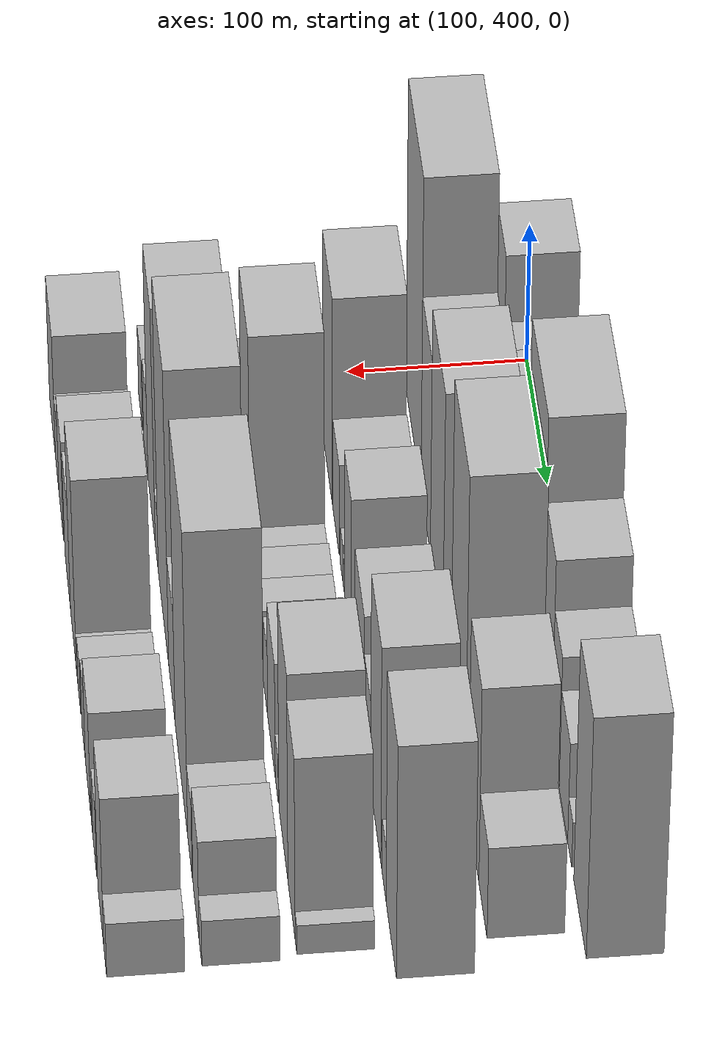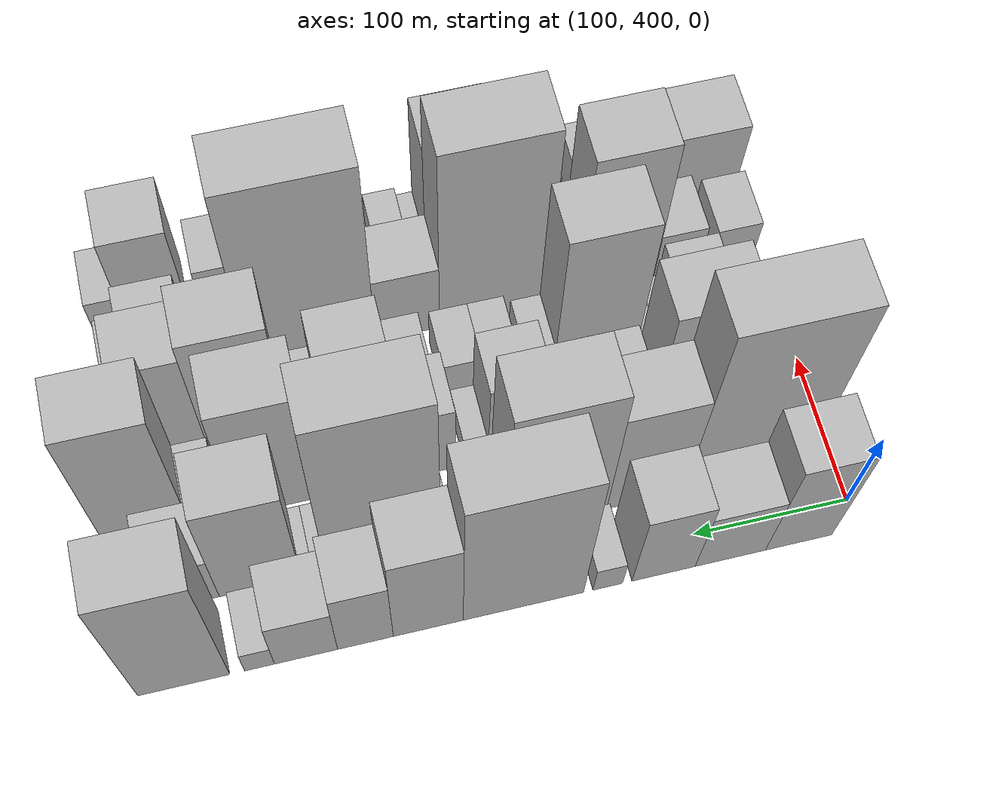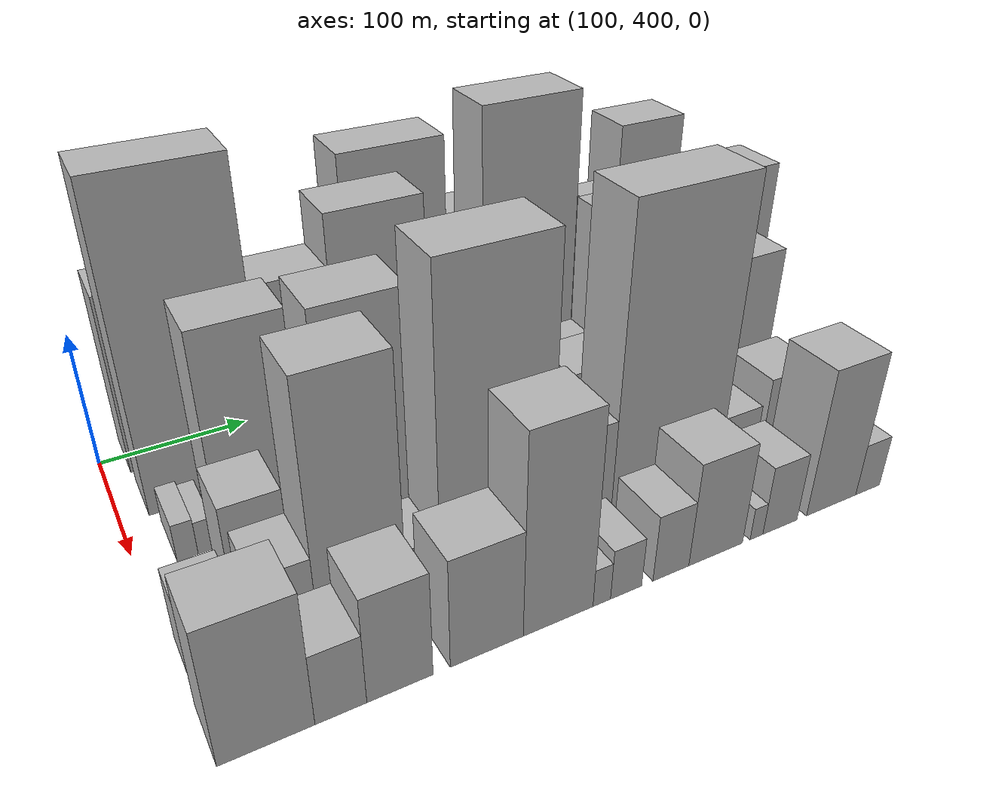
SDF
<sdf version="1.6">
 <world name="default">
  <model name="building_30">
   <static>1</static>
   <pose>100.0000 438.0873 0 0.000000 0.000000 0.000000</pose>
   <link name="link">
    <pose>0 0 66.00 0 0 0</pose>
    <collision name="collision"><geometry><box><size>40.0000 43.2168 132.0000</size></box></geometry></collision>
    <visual name="visual">
     <cast_shadows>0</cast_shadows>
     <geometry><box><size>40.0000 43.2168 132.0000</size></box></geometry>
     <material>
      <script>
       <uri>model://HANNAS_wall/materials/scripts</uri>
       <uri>model://HANNAS_wall/materials/textures</uri>
       <name>vrc/HANNAS_wall</name>
      </script>
     </material>
    </visual>
   </link>
  </model>
  <model name="building_31">
   <static>1</static>
   <pose>100.0000 482.3826 0 0.000000 0.000000 0.000000</pose>
   <link name="link">
    <pose>0 0 42.00 0 0 0</pose>
    <collision name="collision"><geometry><box><size>40.0000 45.3738 84.0000</size></box></geometry></collision>
    <visual name="visual">
     <cast_shadows>0</cast_shadows>
     <geometry><box><size>40.0000 45.3738 84.0000</size></box></geometry>
     <material>
      <script>
       <uri>model://HANNAS_wall/materials/scripts</uri>
       <uri>model://HANNAS_wall/materials/textures</uri>
       <name>vrc/HANNAS_wall</name>
      </script>
     </material>
    </visual>
   </link>
  </model>
  <model name="building_32">
   <static>1</static>
   <pose>100.0000 525.3424 0 0.000000 0.000000 0.000000</pose>
   <link name="link">
    <pose>0 0 52.50 0 0 0</pose>
    <collision name="collision"><geometry><box><size>40.0000 40.5458 105.0000</size></box></geometry></collision>
    <visual name="visual">
     <cast_shadows>0</cast_shadows>
     <geometry><box><size>40.0000 40.5458 105.0000</size></box></geometry>
     <material>
      <script>
       <uri>model://HANNAS_wall/materials/scripts</uri>
       <uri>model://HANNAS_wall/materials/textures</uri>
       <name>vrc/HANNAS_wall</name>
      </script>
     </material>
    </visual>
   </link>
  </model>
  <model name="building_33">
   <static>1</static>
   <pose>100.0000 561.0534 0 0.000000 0.000000 0.000000</pose>
   <link name="link">
    <pose>0 0 18.00 0 0 0</pose>
    <collision name="collision"><geometry><box><size>40.0000 18.8762 36.0000</size></box></geometry></collision>
    <visual name="visual">
     <cast_shadows>0</cast_shadows>
     <geometry><box><size>40.0000 18.8762 36.0000</size></box></geometry>
     <material>
      <script>
       <uri>model://HANNAS_wall/materials/scripts</uri>
       <uri>model://HANNAS_wall/materials/textures</uri>
       <name>vrc/HANNAS_wall</name>
      </script>
     </material>
    </visual>
   </link>
  </model>
  <model name="building_34">
   <static>1</static>
   <pose>100.0000 614.4144 0 0.000000 0.000000 0.000000</pose>
   <link name="link">
    <pose>0 0 96.00 0 0 0</pose>
    <collision name="collision"><geometry><box><size>40.0000 75.8458 192.0000</size></box></geometry></collision>
    <visual name="visual">
     <cast_shadows>0</cast_shadows>
     <geometry><box><size>40.0000 75.8458 192.0000</size></box></geometry>
     <material>
      <script>
       <uri>model://HANNAS_wall/materials/scripts</uri>
       <uri>model://HANNAS_wall/materials/textures</uri>
       <name>vrc/HANNAS_wall</name>
      </script>
     </material>
    </visual>
   </link>
  </model>
  <model name="building_35">
   <static>1</static>
   <pose>100.0000 674.1312 0 0.000000 0.000000 0.000000</pose>
   <link name="link">
    <pose>0 0 66.00 0 0 0</pose>
    <collision name="collision"><geometry><box><size>40.0000 43.5878 132.0000</size></box></geometry></collision>
    <visual name="visual">
     <cast_shadows>0</cast_shadows>
     <geometry><box><size>40.0000 43.5878 132.0000</size></box></geometry>
     <material>
      <script>
       <uri>model://HANNAS_wall/materials/scripts</uri>
       <uri>model://HANNAS_wall/materials/textures</uri>
       <name>vrc/HANNAS_wall</name>
      </script>
     </material>
    </visual>
   </link>
  </model>
  <model name="building_36">
   <static>1</static>
   <pose>100.0000 713.1540 0 0.000000 0.000000 0.000000</pose>
   <link name="link">
    <pose>0 0 48.00 0 0 0</pose>
    <collision name="collision"><geometry><box><size>40.0000 34.4577 96.0000</size></box></geometry></collision>
    <visual name="visual">
     <cast_shadows>0</cast_shadows>
     <geometry><box><size>40.0000 34.4577 96.0000</size></box></geometry>
     <material>
      <script>
       <uri>model://HANNAS_wall/materials/scripts</uri>
       <uri>model://HANNAS_wall/materials/textures</uri>
       <name>vrc/HANNAS_wall</name>
      </script>
     </material>
    </visual>
   </link>
  </model>
  <model name="building_37">
   <static>1</static>
   <pose>100.0000 749.8381 0 0.000000 0.000000 0.000000</pose>
   <link name="link">
    <pose>0 0 36.00 0 0 0</pose>
    <collision name="collision"><geometry><box><size>40.0000 38.9105 72.0000</size></box></geometry></collision>
    <visual name="visual">
     <cast_shadows>0</cast_shadows>
     <geometry><box><size>40.0000 38.9105 72.0000</size></box></geometry>
     <material>
      <script>
       <uri>model://HANNAS_wall/materials/scripts</uri>
       <uri>model://HANNAS_wall/materials/textures</uri>
       <name>vrc/HANNAS_wall</name>
      </script>
     </material>
    </visual>
   </link>
  </model>
  <model name="building_38">
   <static>1</static>
   <pose>100.0000 778.4212 0 0.000000 0.000000 0.000000</pose>
   <link name="link">
    <pose>0 0 16.50 0 0 0</pose>
    <collision name="collision"><geometry><box><size>40.0000 18.2558 33.0000</size></box></geometry></collision>
    <visual name="visual">
     <cast_shadows>0</cast_shadows>
     <geometry><box><size>40.0000 18.2558 33.0000</size></box></geometry>
     <material>
      <script>
       <uri>model://HANNAS_wall/materials/scripts</uri>
       <uri>model://HANNAS_wall/materials/textures</uri>
       <name>vrc/HANNAS_wall</name>
      </script>
     </material>
    </visual>
   </link>
  </model>
  <model name="building_39">
   <static>1</static>
   <pose>100.0000 824.4427 0 0.000000 0.000000 0.000000</pose>
   <link name="link">
    <pose>0 0 87.00 0 0 0</pose>
    <collision name="collision"><geometry><box><size>40.0000 55.7872 174.0000</size></box></geometry></collision>
    <visual name="visual">
     <cast_shadows>0</cast_shadows>
     <geometry><box><size>40.0000 55.7872 174.0000</size></box></geometry>
     <material>
      <script>
       <uri>model://HANNAS_wall/materials/scripts</uri>
       <uri>model://HANNAS_wall/materials/textures</uri>
       <name>vrc/HANNAS_wall</name>
      </script>
     </material>
    </visual>
   </link>
  </model>
  <model name="building_76">
   <static>1</static>
   <pose>149.0000 457.8460 0 0.000000 0.000000 0.000000</pose>
   <link name="link">
    <pose>0 0 112.50 0 0 0</pose>
    <collision name="collision"><geometry><box><size>40.0000 80.5373 225.0000</size></box></geometry></collision>
    <visual name="visual">
     <cast_shadows>0</cast_shadows>
     <geometry><box><size>40.0000 80.5373 225.0000</size></box></geometry>
     <material>
      <script>
       <uri>model://HANNAS_wall/materials/scripts</uri>
       <uri>model://HANNAS_wall/materials/textures</uri>
       <name>vrc/HANNAS_wall</name>
      </script>
     </material>
    </visual>
   </link>
  </model>
  <model name="building_77">
   <static>1</static>
   <pose>149.0000 523.0994 0 0.000000 0.000000 0.000000</pose>
   <link name="link">
    <pose>0 0 70.50 0 0 0</pose>
    <collision name="collision"><geometry><box><size>40.0000 49.9693 141.0000</size></box></geometry></collision>
    <visual name="visual">
     <cast_shadows>0</cast_shadows>
     <geometry><box><size>40.0000 49.9693 141.0000</size></box></geometry>
     <material>
      <script>
       <uri>model://HANNAS_wall/materials/scripts</uri>
       <uri>model://HANNAS_wall/materials/textures</uri>
       <name>vrc/HANNAS_wall</name>
      </script>
     </material>
    </visual>
   </link>
  </model>
  <model name="building_78">
   <static>1</static>
   <pose>149.0000 580.7592 0 0.000000 0.000000 0.000000</pose>
   <link name="link">
    <pose>0 0 88.50 0 0 0</pose>
    <collision name="collision"><geometry><box><size>40.0000 65.3503 177.0000</size></box></geometry></collision>
    <visual name="visual">
     <cast_shadows>0</cast_shadows>
     <geometry><box><size>40.0000 65.3503 177.0000</size></box></geometry>
     <material>
      <script>
       <uri>model://HANNAS_wall/materials/scripts</uri>
       <uri>model://HANNAS_wall/materials/textures</uri>
       <name>vrc/HANNAS_wall</name>
      </script>
     </material>
    </visual>
   </link>
  </model>
  <model name="building_79">
   <static>1</static>
   <pose>149.0000 624.8012 0 0.000000 0.000000 0.000000</pose>
   <link name="link">
    <pose>0 0 21.00 0 0 0</pose>
    <collision name="collision"><geometry><box><size>40.0000 22.7337 42.0000</size></box></geometry></collision>
    <visual name="visual">
     <cast_shadows>0</cast_shadows>
     <geometry><box><size>40.0000 22.7337 42.0000</size></box></geometry>
     <material>
      <script>
       <uri>model://HANNAS_wall/materials/scripts</uri>
       <uri>model://HANNAS_wall/materials/textures</uri>
       <name>vrc/HANNAS_wall</name>
      </script>
     </material>
    </visual>
   </link>
  </model>
  <model name="building_80">
   <static>1</static>
   <pose>149.0000 650.3942 0 0.000000 0.000000 0.000000</pose>
   <link name="link">
    <pose>0 0 10.50 0 0 0</pose>
    <collision name="collision"><geometry><box><size>40.0000 8.4525 21.0000</size></box></geometry></collision>
    <visual name="visual">
     <cast_shadows>0</cast_shadows>
     <geometry><box><size>40.0000 8.4525 21.0000</size></box></geometry>
     <material>
      <script>
       <uri>model://HANNAS_wall/materials/scripts</uri>
       <uri>model://HANNAS_wall/materials/textures</uri>
       <name>vrc/HANNAS_wall</name>
      </script>
     </material>
    </visual>
   </link>
  </model>
  <model name="building_81">
   <static>1</static>
   <pose>149.0000 690.8088 0 0.000000 0.000000 0.000000</pose>
   <link name="link">
    <pose>0 0 112.50 0 0 0</pose>
    <collision name="collision"><geometry><box><size>40.0000 72.3766 225.0000</size></box></geometry></collision>
    <visual name="visual">
     <cast_shadows>0</cast_shadows>
     <geometry><box><size>40.0000 72.3766 225.0000</size></box></geometry>
     <material>
      <script>
       <uri>model://HANNAS_wall/materials/scripts</uri>
       <uri>model://HANNAS_wall/materials/textures</uri>
       <name>vrc/HANNAS_wall</name>
      </script>
     </material>
    </visual>
   </link>
  </model>
  <model name="building_82">
   <static>1</static>
   <pose>149.0000 731.0602 0 0.000000 0.000000 0.000000</pose>
   <link name="link">
    <pose>0 0 9.00 0 0 0</pose>
    <collision name="collision"><geometry><box><size>40.0000 8.1261 18.0000</size></box></geometry></collision>
    <visual name="visual">
     <cast_shadows>0</cast_shadows>
     <geometry><box><size>40.0000 8.1261 18.0000</size></box></geometry>
     <material>
      <script>
       <uri>model://HANNAS_wall/materials/scripts</uri>
       <uri>model://HANNAS_wall/materials/textures</uri>
       <name>vrc/HANNAS_wall</name>
      </script>
     </material>
    </visual>
   </link>
  </model>
  <model name="building_83">
   <static>1</static>
   <pose>149.0000 738.9481 0 0.000000 0.000000 0.000000</pose>
   <link name="link">
    <pose>0 0 9.00 0 0 0</pose>
    <collision name="collision"><geometry><box><size>40.0000 7.6496 18.0000</size></box></geometry></collision>
    <visual name="visual">
     <cast_shadows>0</cast_shadows>
     <geometry><box><size>40.0000 7.6496 18.0000</size></box></geometry>
     <material>
      <script>
       <uri>model://HANNAS_wall/materials/scripts</uri>
       <uri>model://HANNAS_wall/materials/textures</uri>
       <name>vrc/HANNAS_wall</name>
      </script>
     </material>
    </visual>
   </link>
  </model>
  <model name="building_84">
   <static>1</static>
   <pose>149.0000 768.4375 0 0.000000 0.000000 0.000000</pose>
   <link name="link">
    <pose>0 0 70.50 0 0 0</pose>
    <collision name="collision"><geometry><box><size>40.0000 51.3292 141.0000</size></box></geometry></collision>
    <visual name="visual">
     <cast_shadows>0</cast_shadows>
     <geometry><box><size>40.0000 51.3292 141.0000</size></box></geometry>
     <material>
      <script>
       <uri>model://HANNAS_wall/materials/scripts</uri>
       <uri>model://HANNAS_wall/materials/textures</uri>
       <name>vrc/HANNAS_wall</name>
      </script>
     </material>
    </visual>
   </link>
  </model>
  <model name="building_85">
   <static>1</static>
   <pose>149.0000 813.8109 0 0.000000 0.000000 0.000000</pose>
   <link name="link">
    <pose>0 0 33.00 0 0 0</pose>
    <collision name="collision"><geometry><box><size>40.0000 39.4176 66.0000</size></box></geometry></collision>
    <visual name="visual">
     <cast_shadows>0</cast_shadows>
     <geometry><box><size>40.0000 39.4176 66.0000</size></box></geometry>
     <material>
      <script>
       <uri>model://HANNAS_wall/materials/scripts</uri>
       <uri>model://HANNAS_wall/materials/textures</uri>
       <name>vrc/HANNAS_wall</name>
      </script>
     </material>
    </visual>
   </link>
  </model>
  <model name="building_122">
   <static>1</static>
   <pose>198.0000 429.2547 0 0.000000 0.000000 0.000000</pose>
   <link name="link">
    <pose>0 0 13.50 0 0 0</pose>
    <collision name="collision"><geometry><box><size>40.0000 12.5790 27.0000</size></box></geometry></collision>
    <visual name="visual">
     <cast_shadows>0</cast_shadows>
     <geometry><box><size>40.0000 12.5790 27.0000</size></box></geometry>
     <material>
      <script>
       <uri>model://HANNAS_wall/materials/scripts</uri>
       <uri>model://HANNAS_wall/materials/textures</uri>
       <name>vrc/HANNAS_wall</name>
      </script>
     </material>
    </visual>
   </link>
  </model>
  <model name="building_123">
   <static>1</static>
   <pose>198.0000 441.0207 0 0.000000 0.000000 0.000000</pose>
   <link name="link">
    <pose>0 0 12.00 0 0 0</pose>
    <collision name="collision"><geometry><box><size>40.0000 10.9529 24.0000</size></box></geometry></collision>
    <visual name="visual">
     <cast_shadows>0</cast_shadows>
     <geometry><box><size>40.0000 10.9529 24.0000</size></box></geometry>
     <material>
      <script>
       <uri>model://HANNAS_wall/materials/scripts</uri>
       <uri>model://HANNAS_wall/materials/textures</uri>
       <name>vrc/HANNAS_wall</name>
      </script>
     </material>
    </visual>
   </link>
  </model>
  <model name="building_124">
   <static>1</static>
   <pose>198.0000 477.3033 0 0.000000 0.000000 0.000000</pose>
   <link name="link">
    <pose>0 0 75.00 0 0 0</pose>
    <collision name="collision"><geometry><box><size>40.0000 55.6124 150.0000</size></box></geometry></collision>
    <visual name="visual">
     <cast_shadows>0</cast_shadows>
     <geometry><box><size>40.0000 55.6124 150.0000</size></box></geometry>
     <material>
      <script>
       <uri>model://HANNAS_wall/materials/scripts</uri>
       <uri>model://HANNAS_wall/materials/textures</uri>
       <name>vrc/HANNAS_wall</name>
      </script>
     </material>
    </visual>
   </link>
  </model>
  <model name="building_125">
   <static>1</static>
   <pose>198.0000 526.4189 0 0.000000 0.000000 0.000000</pose>
   <link name="link">
    <pose>0 0 33.00 0 0 0</pose>
    <collision name="collision"><geometry><box><size>40.0000 36.6189 66.0000</size></box></geometry></collision>
    <visual name="visual">
     <cast_shadows>0</cast_shadows>
     <geometry><box><size>40.0000 36.6189 66.0000</size></box></geometry>
     <material>
      <script>
       <uri>model://HANNAS_wall/materials/scripts</uri>
       <uri>model://HANNAS_wall/materials/textures</uri>
       <name>vrc/HANNAS_wall</name>
      </script>
     </material>
    </visual>
   </link>
  </model>
  <model name="building_126">
   <static>1</static>
   <pose>198.0000 558.4666 0 0.000000 0.000000 0.000000</pose>
   <link name="link">
    <pose>0 0 13.50 0 0 0</pose>
    <collision name="collision"><geometry><box><size>40.0000 13.4764 27.0000</size></box></geometry></collision>
    <visual name="visual">
     <cast_shadows>0</cast_shadows>
     <geometry><box><size>40.0000 13.4764 27.0000</size></box></geometry>
     <material>
      <script>
       <uri>model://HANNAS_wall/materials/scripts</uri>
       <uri>model://HANNAS_wall/materials/textures</uri>
       <name>vrc/HANNAS_wall</name>
      </script>
     </material>
    </visual>
   </link>
  </model>
  <model name="building_127">
   <static>1</static>
   <pose>198.0000 569.7485 0 0.000000 0.000000 0.000000</pose>
   <link name="link">
    <pose>0 0 10.50 0 0 0</pose>
    <collision name="collision"><geometry><box><size>40.0000 9.0875 21.0000</size></box></geometry></collision>
    <visual name="visual">
     <cast_shadows>0</cast_shadows>
     <geometry><box><size>40.0000 9.0875 21.0000</size></box></geometry>
     <material>
      <script>
       <uri>model://HANNAS_wall/materials/scripts</uri>
       <uri>model://HANNAS_wall/materials/textures</uri>
       <name>vrc/HANNAS_wall</name>
      </script>
     </material>
    </visual>
   </link>
  </model>
  <model name="building_128">
   <static>1</static>
   <pose>198.0000 593.5507 0 0.000000 0.000000 0.000000</pose>
   <link name="link">
    <pose>0 0 52.50 0 0 0</pose>
    <collision name="collision"><geometry><box><size>40.0000 38.5168 105.0000</size></box></geometry></collision>
    <visual name="visual">
     <cast_shadows>0</cast_shadows>
     <geometry><box><size>40.0000 38.5168 105.0000</size></box></geometry>
     <material>
      <script>
       <uri>model://HANNAS_wall/materials/scripts</uri>
       <uri>model://HANNAS_wall/materials/textures</uri>
       <name>vrc/HANNAS_wall</name>
      </script>
     </material>
    </visual>
   </link>
  </model>
  <model name="building_129">
   <static>1</static>
   <pose>198.0000 620.3101 0 0.000000 0.000000 0.000000</pose>
   <link name="link">
    <pose>0 0 15.00 0 0 0</pose>
    <collision name="collision"><geometry><box><size>40.0000 15.0019 30.0000</size></box></geometry></collision>
    <visual name="visual">
     <cast_shadows>0</cast_shadows>
     <geometry><box><size>40.0000 15.0019 30.0000</size></box></geometry>
     <material>
      <script>
       <uri>model://HANNAS_wall/materials/scripts</uri>
       <uri>model://HANNAS_wall/materials/textures</uri>
       <name>vrc/HANNAS_wall</name>
      </script>
     </material>
    </visual>
   </link>
  </model>
  <model name="building_130">
   <static>1</static>
   <pose>198.0000 659.4314 0 0.000000 0.000000 0.000000</pose>
   <link name="link">
    <pose>0 0 45.00 0 0 0</pose>
    <collision name="collision"><geometry><box><size>40.0000 51.2406 90.0000</size></box></geometry></collision>
    <visual name="visual">
     <cast_shadows>0</cast_shadows>
     <geometry><box><size>40.0000 51.2406 90.0000</size></box></geometry>
     <material>
      <script>
       <uri>model://HANNAS_wall/materials/scripts</uri>
       <uri>model://HANNAS_wall/materials/textures</uri>
       <name>vrc/HANNAS_wall</name>
      </script>
     </material>
    </visual>
   </link>
  </model>
  <model name="building_131">
   <static>1</static>
   <pose>198.0000 703.1479 0 0.000000 0.000000 0.000000</pose>
   <link name="link">
    <pose>0 0 31.50 0 0 0</pose>
    <collision name="collision"><geometry><box><size>40.0000 36.1924 63.0000</size></box></geometry></collision>
    <visual name="visual">
     <cast_shadows>0</cast_shadows>
     <geometry><box><size>40.0000 36.1924 63.0000</size></box></geometry>
     <material>
      <script>
       <uri>model://HANNAS_wall/materials/scripts</uri>
       <uri>model://HANNAS_wall/materials/textures</uri>
       <name>vrc/HANNAS_wall</name>
      </script>
     </material>
    </visual>
   </link>
  </model>
  <model name="building_132">
   <static>1</static>
   <pose>198.0000 748.2386 0 0.000000 0.000000 0.000000</pose>
   <link name="link">
    <pose>0 0 78.00 0 0 0</pose>
    <collision name="collision"><geometry><box><size>40.0000 53.9890 156.0000</size></box></geometry></collision>
    <visual name="visual">
     <cast_shadows>0</cast_shadows>
     <geometry><box><size>40.0000 53.9890 156.0000</size></box></geometry>
     <material>
      <script>
       <uri>model://HANNAS_wall/materials/scripts</uri>
       <uri>model://HANNAS_wall/materials/textures</uri>
       <name>vrc/HANNAS_wall</name>
      </script>
     </material>
    </visual>
   </link>
  </model>
  <model name="building_133">
   <static>1</static>
   <pose>198.0000 778.5084 0 0.000000 0.000000 0.000000</pose>
   <link name="link">
    <pose>0 0 7.50 0 0 0</pose>
    <collision name="collision"><geometry><box><size>40.0000 6.5507 15.0000</size></box></geometry></collision>
    <visual name="visual">
     <cast_shadows>0</cast_shadows>
     <geometry><box><size>40.0000 6.5507 15.0000</size></box></geometry>
     <material>
      <script>
       <uri>model://HANNAS_wall/materials/scripts</uri>
       <uri>model://HANNAS_wall/materials/textures</uri>
       <name>vrc/HANNAS_wall</name>
      </script>
     </material>
    </visual>
   </link>
  </model>
  <model name="building_134">
   <static>1</static>
   <pose>198.0000 792.7010 0 0.000000 0.000000 0.000000</pose>
   <link name="link">
    <pose>0 0 19.50 0 0 0</pose>
    <collision name="collision"><geometry><box><size>40.0000 21.8345 39.0000</size></box></geometry></collision>
    <visual name="visual">
     <cast_shadows>0</cast_shadows>
     <geometry><box><size>40.0000 21.8345 39.0000</size></box></geometry>
     <material>
      <script>
       <uri>model://HANNAS_wall/materials/scripts</uri>
       <uri>model://HANNAS_wall/materials/textures</uri>
       <name>vrc/HANNAS_wall</name>
      </script>
     </material>
    </visual>
   </link>
  </model>
  <model name="building_135">
   <static>1</static>
   <pose>198.0000 830.3828 0 0.000000 0.000000 0.000000</pose>
   <link name="link">
    <pose>0 0 84.00 0 0 0</pose>
    <collision name="collision"><geometry><box><size>40.0000 53.5291 168.0000</size></box></geometry></collision>
    <visual name="visual">
     <cast_shadows>0</cast_shadows>
     <geometry><box><size>40.0000 53.5291 168.0000</size></box></geometry>
     <material>
      <script>
       <uri>model://HANNAS_wall/materials/scripts</uri>
       <uri>model://HANNAS_wall/materials/textures</uri>
       <name>vrc/HANNAS_wall</name>
      </script>
     </material>
    </visual>
   </link>
  </model>
  <model name="building_171">
   <static>1</static>
   <pose>247.0000 460.0760 0 0.000000 0.000000 0.000000</pose>
   <link name="link">
    <pose>0 0 34.50 0 0 0</pose>
    <collision name="collision"><geometry><box><size>40.0000 35.2977 69.0000</size></box></geometry></collision>
    <visual name="visual">
     <cast_shadows>0</cast_shadows>
     <geometry><box><size>40.0000 35.2977 69.0000</size></box></geometry>
     <material>
      <script>
       <uri>model://HANNAS_wall/materials/scripts</uri>
       <uri>model://HANNAS_wall/materials/textures</uri>
       <name>vrc/HANNAS_wall</name>
      </script>
     </material>
    </visual>
   </link>
  </model>
  <model name="building_172">
   <static>1</static>
   <pose>247.0000 483.9654 0 0.000000 0.000000 0.000000</pose>
   <link name="link">
    <pose>0 0 13.50 0 0 0</pose>
    <collision name="collision"><geometry><box><size>40.0000 12.4811 27.0000</size></box></geometry></collision>
    <visual name="visual">
     <cast_shadows>0</cast_shadows>
     <geometry><box><size>40.0000 12.4811 27.0000</size></box></geometry>
     <material>
      <script>
       <uri>model://HANNAS_wall/materials/scripts</uri>
       <uri>model://HANNAS_wall/materials/textures</uri>
       <name>vrc/HANNAS_wall</name>
      </script>
     </material>
    </visual>
   </link>
  </model>
  <model name="building_173">
   <static>1</static>
   <pose>247.0000 496.0633 0 0.000000 0.000000 0.000000</pose>
   <link name="link">
    <pose>0 0 13.50 0 0 0</pose>
    <collision name="collision"><geometry><box><size>40.0000 11.7147 27.0000</size></box></geometry></collision>
    <visual name="visual">
     <cast_shadows>0</cast_shadows>
     <geometry><box><size>40.0000 11.7147 27.0000</size></box></geometry>
     <material>
      <script>
       <uri>model://HANNAS_wall/materials/scripts</uri>
       <uri>model://HANNAS_wall/materials/textures</uri>
       <name>vrc/HANNAS_wall</name>
      </script>
     </material>
    </visual>
   </link>
  </model>
  <model name="building_174">
   <static>1</static>
   <pose>247.0000 529.4366 0 0.000000 0.000000 0.000000</pose>
   <link name="link">
    <pose>0 0 87.00 0 0 0</pose>
    <collision name="collision"><geometry><box><size>40.0000 55.0321 174.0000</size></box></geometry></collision>
    <visual name="visual">
     <cast_shadows>0</cast_shadows>
     <geometry><box><size>40.0000 55.0321 174.0000</size></box></geometry>
     <material>
      <script>
       <uri>model://HANNAS_wall/materials/scripts</uri>
       <uri>model://HANNAS_wall/materials/textures</uri>
       <name>vrc/HANNAS_wall</name>
      </script>
     </material>
    </visual>
   </link>
  </model>
  <model name="building_175">
   <static>1</static>
   <pose>247.0000 566.7355 0 0.000000 0.000000 0.000000</pose>
   <link name="link">
    <pose>0 0 18.00 0 0 0</pose>
    <collision name="collision"><geometry><box><size>40.0000 19.5657 36.0000</size></box></geometry></collision>
    <visual name="visual">
     <cast_shadows>0</cast_shadows>
     <geometry><box><size>40.0000 19.5657 36.0000</size></box></geometry>
     <material>
      <script>
       <uri>model://HANNAS_wall/materials/scripts</uri>
       <uri>model://HANNAS_wall/materials/textures</uri>
       <name>vrc/HANNAS_wall</name>
      </script>
     </material>
    </visual>
   </link>
  </model>
  <model name="building_176">
   <static>1</static>
   <pose>247.0000 593.3896 0 0.000000 0.000000 0.000000</pose>
   <link name="link">
    <pose>0 0 22.50 0 0 0</pose>
    <collision name="collision"><geometry><box><size>40.0000 23.7425 45.0000</size></box></geometry></collision>
    <visual name="visual">
     <cast_shadows>0</cast_shadows>
     <geometry><box><size>40.0000 23.7425 45.0000</size></box></geometry>
     <material>
      <script>
       <uri>model://HANNAS_wall/materials/scripts</uri>
       <uri>model://HANNAS_wall/materials/textures</uri>
       <name>vrc/HANNAS_wall</name>
      </script>
     </material>
    </visual>
   </link>
  </model>
  <model name="building_177">
   <static>1</static>
   <pose>247.0000 617.6910 0 0.000000 0.000000 0.000000</pose>
   <link name="link">
    <pose>0 0 22.50 0 0 0</pose>
    <collision name="collision"><geometry><box><size>40.0000 24.8602 45.0000</size></box></geometry></collision>
    <visual name="visual">
     <cast_shadows>0</cast_shadows>
     <geometry><box><size>40.0000 24.8602 45.0000</size></box></geometry>
     <material>
      <script>
       <uri>model://HANNAS_wall/materials/scripts</uri>
       <uri>model://HANNAS_wall/materials/textures</uri>
       <name>vrc/HANNAS_wall</name>
      </script>
     </material>
    </visual>
   </link>
  </model>
  <model name="building_178">
   <static>1</static>
   <pose>247.0000 650.2553 0 0.000000 0.000000 0.000000</pose>
   <link name="link">
    <pose>0 0 24.00 0 0 0</pose>
    <collision name="collision"><geometry><box><size>40.0000 26.2685 48.0000</size></box></geometry></collision>
    <visual name="visual">
     <cast_shadows>0</cast_shadows>
     <geometry><box><size>40.0000 26.2685 48.0000</size></box></geometry>
     <material>
      <script>
       <uri>model://HANNAS_wall/materials/scripts</uri>
       <uri>model://HANNAS_wall/materials/textures</uri>
       <name>vrc/HANNAS_wall</name>
      </script>
     </material>
    </visual>
   </link>
  </model>
  <model name="building_179">
   <static>1</static>
   <pose>247.0000 686.2776 0 0.000000 0.000000 0.000000</pose>
   <link name="link">
    <pose>0 0 42.00 0 0 0</pose>
    <collision name="collision"><geometry><box><size>40.0000 45.7761 84.0000</size></box></geometry></collision>
    <visual name="visual">
     <cast_shadows>0</cast_shadows>
     <geometry><box><size>40.0000 45.7761 84.0000</size></box></geometry>
     <material>
      <script>
       <uri>model://HANNAS_wall/materials/scripts</uri>
       <uri>model://HANNAS_wall/materials/textures</uri>
       <name>vrc/HANNAS_wall</name>
      </script>
     </material>
    </visual>
   </link>
  </model>
  <model name="building_180">
   <static>1</static>
   <pose>247.0000 718.2136 0 0.000000 0.000000 0.000000</pose>
   <link name="link">
    <pose>0 0 16.50 0 0 0</pose>
    <collision name="collision"><geometry><box><size>40.0000 18.0959 33.0000</size></box></geometry></collision>
    <visual name="visual">
     <cast_shadows>0</cast_shadows>
     <geometry><box><size>40.0000 18.0959 33.0000</size></box></geometry>
     <material>
      <script>
       <uri>model://HANNAS_wall/materials/scripts</uri>
       <uri>model://HANNAS_wall/materials/textures</uri>
       <name>vrc/HANNAS_wall</name>
      </script>
     </material>
    </visual>
   </link>
  </model>
  <model name="building_181">
   <static>1</static>
   <pose>247.0000 757.5218 0 0.000000 0.000000 0.000000</pose>
   <link name="link">
    <pose>0 0 75.00 0 0 0</pose>
    <collision name="collision"><geometry><box><size>40.0000 52.5205 150.0000</size></box></geometry></collision>
    <visual name="visual">
     <cast_shadows>0</cast_shadows>
     <geometry><box><size>40.0000 52.5205 150.0000</size></box></geometry>
     <material>
      <script>
       <uri>model://HANNAS_wall/materials/scripts</uri>
       <uri>model://HANNAS_wall/materials/textures</uri>
       <name>vrc/HANNAS_wall</name>
      </script>
     </material>
    </visual>
   </link>
  </model>
  <model name="building_182">
   <static>1</static>
   <pose>247.0000 804.6138 0 0.000000 0.000000 0.000000</pose>
   <link name="link">
    <pose>0 0 66.00 0 0 0</pose>
    <collision name="collision"><geometry><box><size>40.0000 41.6635 132.0000</size></box></geometry></collision>
    <visual name="visual">
     <cast_shadows>0</cast_shadows>
     <geometry><box><size>40.0000 41.6635 132.0000</size></box></geometry>
     <material>
      <script>
       <uri>model://HANNAS_wall/materials/scripts</uri>
       <uri>model://HANNAS_wall/materials/textures</uri>
       <name>vrc/HANNAS_wall</name>
      </script>
     </material>
    </visual>
   </link>
  </model>
  <model name="building_183">
   <static>1</static>
   <pose>247.0000 830.5005 0 0.000000 0.000000 0.000000</pose>
   <link name="link">
    <pose>0 0 10.50 0 0 0</pose>
    <collision name="collision"><geometry><box><size>40.0000 10.1100 21.0000</size></box></geometry></collision>
    <visual name="visual">
     <cast_shadows>0</cast_shadows>
     <geometry><box><size>40.0000 10.1100 21.0000</size></box></geometry>
     <material>
      <script>
       <uri>model://HANNAS_wall/materials/scripts</uri>
       <uri>model://HANNAS_wall/materials/textures</uri>
       <name>vrc/HANNAS_wall</name>
      </script>
     </material>
    </visual>
   </link>
  </model>
  <model name="building_220">
   <static>1</static>
   <pose>296.0000 421.8518 0 0.000000 0.000000 0.000000</pose>
   <link name="link">
    <pose>0 0 25.50 0 0 0</pose>
    <collision name="collision"><geometry><box><size>40.0000 29.4371 51.0000</size></box></geometry></collision>
    <visual name="visual">
     <cast_shadows>0</cast_shadows>
     <geometry><box><size>40.0000 29.4371 51.0000</size></box></geometry>
     <material>
      <script>
       <uri>model://HANNAS_wall/materials/scripts</uri>
       <uri>model://HANNAS_wall/materials/textures</uri>
       <name>vrc/HANNAS_wall</name>
      </script>
     </material>
    </visual>
   </link>
  </model>
  <model name="building_221">
   <static>1</static>
   <pose>296.0000 460.0699 0 0.000000 0.000000 0.000000</pose>
   <link name="link">
    <pose>0 0 30.00 0 0 0</pose>
    <collision name="collision"><geometry><box><size>40.0000 30.9992 60.0000</size></box></geometry></collision>
    <visual name="visual">
     <cast_shadows>0</cast_shadows>
     <geometry><box><size>40.0000 30.9992 60.0000</size></box></geometry>
     <material>
      <script>
       <uri>model://HANNAS_wall/materials/scripts</uri>
       <uri>model://HANNAS_wall/materials/textures</uri>
       <name>vrc/HANNAS_wall</name>
      </script>
     </material>
    </visual>
   </link>
  </model>
  <model name="building_222">
   <static>1</static>
   <pose>296.0000 501.4451 0 0.000000 0.000000 0.000000</pose>
   <link name="link">
    <pose>0 0 85.50 0 0 0</pose>
    <collision name="collision"><geometry><box><size>40.0000 51.7511 171.0000</size></box></geometry></collision>
    <visual name="visual">
     <cast_shadows>0</cast_shadows>
     <geometry><box><size>40.0000 51.7511 171.0000</size></box></geometry>
     <material>
      <script>
       <uri>model://HANNAS_wall/materials/scripts</uri>
       <uri>model://HANNAS_wall/materials/textures</uri>
       <name>vrc/HANNAS_wall</name>
      </script>
     </material>
    </visual>
   </link>
  </model>
  <model name="building_223">
   <static>1</static>
   <pose>296.0000 537.8860 0 0.000000 0.000000 0.000000</pose>
   <link name="link">
    <pose>0 0 21.00 0 0 0</pose>
    <collision name="collision"><geometry><box><size>40.0000 21.1307 42.0000</size></box></geometry></collision>
    <visual name="visual">
     <cast_shadows>0</cast_shadows>
     <geometry><box><size>40.0000 21.1307 42.0000</size></box></geometry>
     <material>
      <script>
       <uri>model://HANNAS_wall/materials/scripts</uri>
       <uri>model://HANNAS_wall/materials/textures</uri>
       <name>vrc/HANNAS_wall</name>
      </script>
     </material>
    </visual>
   </link>
  </model>
  <model name="building_224">
   <static>1</static>
   <pose>296.0000 584.7406 0 0.000000 0.000000 0.000000</pose>
   <link name="link">
    <pose>0 0 106.50 0 0 0</pose>
    <collision name="collision"><geometry><box><size>40.0000 72.5785 213.0000</size></box></geometry></collision>
    <visual name="visual">
     <cast_shadows>0</cast_shadows>
     <geometry><box><size>40.0000 72.5785 213.0000</size></box></geometry>
     <material>
      <script>
       <uri>model://HANNAS_wall/materials/scripts</uri>
       <uri>model://HANNAS_wall/materials/textures</uri>
       <name>vrc/HANNAS_wall</name>
      </script>
     </material>
    </visual>
   </link>
  </model>
  <model name="building_225">
   <static>1</static>
   <pose>296.0000 642.5005 0 0.000000 0.000000 0.000000</pose>
   <link name="link">
    <pose>0 0 40.50 0 0 0</pose>
    <collision name="collision"><geometry><box><size>40.0000 42.9415 81.0000</size></box></geometry></collision>
    <visual name="visual">
     <cast_shadows>0</cast_shadows>
     <geometry><box><size>40.0000 42.9415 81.0000</size></box></geometry>
     <material>
      <script>
       <uri>model://HANNAS_wall/materials/scripts</uri>
       <uri>model://HANNAS_wall/materials/textures</uri>
       <name>vrc/HANNAS_wall</name>
      </script>
     </material>
    </visual>
   </link>
  </model>
  <model name="building_226">
   <static>1</static>
   <pose>296.0000 705.7168 0 0.000000 0.000000 0.000000</pose>
   <link name="link">
    <pose>0 0 109.50 0 0 0</pose>
    <collision name="collision"><geometry><box><size>40.0000 83.4910 219.0000</size></box></geometry></collision>
    <visual name="visual">
     <cast_shadows>0</cast_shadows>
     <geometry><box><size>40.0000 83.4910 219.0000</size></box></geometry>
     <material>
      <script>
       <uri>model://HANNAS_wall/materials/scripts</uri>
       <uri>model://HANNAS_wall/materials/textures</uri>
       <name>vrc/HANNAS_wall</name>
      </script>
     </material>
    </visual>
   </link>
  </model>
  <model name="building_227">
   <static>1</static>
   <pose>296.0000 762.2195 0 0.000000 0.000000 0.000000</pose>
   <link name="link">
    <pose>0 0 27.00 0 0 0</pose>
    <collision name="collision"><geometry><box><size>40.0000 29.5146 54.0000</size></box></geometry></collision>
    <visual name="visual">
     <cast_shadows>0</cast_shadows>
     <geometry><box><size>40.0000 29.5146 54.0000</size></box></geometry>
     <material>
      <script>
       <uri>model://HANNAS_wall/materials/scripts</uri>
       <uri>model://HANNAS_wall/materials/textures</uri>
       <name>vrc/HANNAS_wall</name>
      </script>
     </material>
    </visual>
   </link>
  </model>
  <model name="building_228">
   <static>1</static>
   <pose>296.0000 801.4884 0 0.000000 0.000000 0.000000</pose>
   <link name="link">
    <pose>0 0 36.00 0 0 0</pose>
    <collision name="collision"><geometry><box><size>40.0000 39.0230 72.0000</size></box></geometry></collision>
    <visual name="visual">
     <cast_shadows>0</cast_shadows>
     <geometry><box><size>40.0000 39.0230 72.0000</size></box></geometry>
     <material>
      <script>
       <uri>model://HANNAS_wall/materials/scripts</uri>
       <uri>model://HANNAS_wall/materials/textures</uri>
       <name>vrc/HANNAS_wall</name>
      </script>
     </material>
    </visual>
   </link>
  </model>
  <model name="building_229">
   <static>1</static>
   <pose>296.0000 830.0950 0 0.000000 0.000000 0.000000</pose>
   <link name="link">
    <pose>0 0 16.50 0 0 0</pose>
    <collision name="collision"><geometry><box><size>40.0000 18.1903 33.0000</size></box></geometry></collision>
    <visual name="visual">
     <cast_shadows>0</cast_shadows>
     <geometry><box><size>40.0000 18.1903 33.0000</size></box></geometry>
     <material>
      <script>
       <uri>model://HANNAS_wall/materials/scripts</uri>
       <uri>model://HANNAS_wall/materials/textures</uri>
       <name>vrc/HANNAS_wall</name>
      </script>
     </material>
    </visual>
   </link>
  </model>
  <model name="building_268">
   <static>1</static>
   <pose>345.0000 430.0730 0 0.000000 0.000000 0.000000</pose>
   <link name="link">
    <pose>0 0 45.00 0 0 0</pose>
    <collision name="collision"><geometry><box><size>40.0000 49.2771 90.0000</size></box></geometry></collision>
    <visual name="visual">
     <cast_shadows>0</cast_shadows>
     <geometry><box><size>40.0000 49.2771 90.0000</size></box></geometry>
     <material>
      <script>
       <uri>model://HANNAS_wall/materials/scripts</uri>
       <uri>model://HANNAS_wall/materials/textures</uri>
       <name>vrc/HANNAS_wall</name>
      </script>
     </material>
    </visual>
   </link>
  </model>
  <model name="building_269">
   <static>1</static>
   <pose>345.0000 468.5123 0 0.000000 0.000000 0.000000</pose>
   <link name="link">
    <pose>0 0 24.00 0 0 0</pose>
    <collision name="collision"><geometry><box><size>40.0000 27.6016 48.0000</size></box></geometry></collision>
    <visual name="visual">
     <cast_shadows>0</cast_shadows>
     <geometry><box><size>40.0000 27.6016 48.0000</size></box></geometry>
     <material>
      <script>
       <uri>model://HANNAS_wall/materials/scripts</uri>
       <uri>model://HANNAS_wall/materials/textures</uri>
       <name>vrc/HANNAS_wall</name>
      </script>
     </material>
    </visual>
   </link>
  </model>
  <model name="building_270">
   <static>1</static>
   <pose>345.0000 500.8876 0 0.000000 0.000000 0.000000</pose>
   <link name="link">
    <pose>0 0 36.00 0 0 0</pose>
    <collision name="collision"><geometry><box><size>40.0000 37.1490 72.0000</size></box></geometry></collision>
    <visual name="visual">
     <cast_shadows>0</cast_shadows>
     <geometry><box><size>40.0000 37.1490 72.0000</size></box></geometry>
     <material>
      <script>
       <uri>model://HANNAS_wall/materials/scripts</uri>
       <uri>model://HANNAS_wall/materials/textures</uri>
       <name>vrc/HANNAS_wall</name>
      </script>
     </material>
    </visual>
   </link>
  </model>
  <model name="building_271">
   <static>1</static>
   <pose>345.0000 551.5958 0 0.000000 0.000000 0.000000</pose>
   <link name="link">
    <pose>0 0 37.50 0 0 0</pose>
    <collision name="collision"><geometry><box><size>40.0000 44.2674 75.0000</size></box></geometry></collision>
    <visual name="visual">
     <cast_shadows>0</cast_shadows>
     <geometry><box><size>40.0000 44.2674 75.0000</size></box></geometry>
     <material>
      <script>
       <uri>model://HANNAS_wall/materials/scripts</uri>
       <uri>model://HANNAS_wall/materials/textures</uri>
       <name>vrc/HANNAS_wall</name>
      </script>
     </material>
    </visual>
   </link>
  </model>
  <model name="building_272">
   <static>1</static>
   <pose>345.0000 596.3611 0 0.000000 0.000000 0.000000</pose>
   <link name="link">
    <pose>0 0 69.00 0 0 0</pose>
    <collision name="collision"><geometry><box><size>40.0000 45.2633 138.0000</size></box></geometry></collision>
    <visual name="visual">
     <cast_shadows>0</cast_shadows>
     <geometry><box><size>40.0000 45.2633 138.0000</size></box></geometry>
     <material>
      <script>
       <uri>model://HANNAS_wall/materials/scripts</uri>
       <uri>model://HANNAS_wall/materials/textures</uri>
       <name>vrc/HANNAS_wall</name>
      </script>
     </material>
    </visual>
   </link>
  </model>
  <model name="building_273">
   <static>1</static>
   <pose>345.0000 624.9179 0 0.000000 0.000000 0.000000</pose>
   <link name="link">
    <pose>0 0 13.50 0 0 0</pose>
    <collision name="collision"><geometry><box><size>40.0000 11.8502 27.0000</size></box></geometry></collision>
    <visual name="visual">
     <cast_shadows>0</cast_shadows>
     <geometry><box><size>40.0000 11.8502 27.0000</size></box></geometry>
     <material>
      <script>
       <uri>model://HANNAS_wall/materials/scripts</uri>
       <uri>model://HANNAS_wall/materials/textures</uri>
       <name>vrc/HANNAS_wall</name>
      </script>
     </material>
    </visual>
   </link>
  </model>
  <model name="building_274">
   <static>1</static>
   <pose>345.0000 641.6305 0 0.000000 0.000000 0.000000</pose>
   <link name="link">
    <pose>0 0 18.00 0 0 0</pose>
    <collision name="collision"><geometry><box><size>40.0000 21.5752 36.0000</size></box></geometry></collision>
    <visual name="visual">
     <cast_shadows>0</cast_shadows>
     <geometry><box><size>40.0000 21.5752 36.0000</size></box></geometry>
     <material>
      <script>
       <uri>model://HANNAS_wall/materials/scripts</uri>
       <uri>model://HANNAS_wall/materials/textures</uri>
       <name>vrc/HANNAS_wall</name>
      </script>
     </material>
    </visual>
   </link>
  </model>
  <model name="building_275">
   <static>1</static>
   <pose>345.0000 673.4260 0 0.000000 0.000000 0.000000</pose>
   <link name="link">
    <pose>0 0 24.00 0 0 0</pose>
    <collision name="collision"><geometry><box><size>40.0000 26.0157 48.0000</size></box></geometry></collision>
    <visual name="visual">
     <cast_shadows>0</cast_shadows>
     <geometry><box><size>40.0000 26.0157 48.0000</size></box></geometry>
     <material>
      <script>
       <uri>model://HANNAS_wall/materials/scripts</uri>
       <uri>model://HANNAS_wall/materials/textures</uri>
       <name>vrc/HANNAS_wall</name>
      </script>
     </material>
    </visual>
   </link>
  </model>
  <model name="building_276">
   <static>1</static>
   <pose>345.0000 706.7764 0 0.000000 0.000000 0.000000</pose>
   <link name="link">
    <pose>0 0 37.50 0 0 0</pose>
    <collision name="collision"><geometry><box><size>40.0000 40.6851 75.0000</size></box></geometry></collision>
    <visual name="visual">
     <cast_shadows>0</cast_shadows>
     <geometry><box><size>40.0000 40.6851 75.0000</size></box></geometry>
     <material>
      <script>
       <uri>model://HANNAS_wall/materials/scripts</uri>
       <uri>model://HANNAS_wall/materials/textures</uri>
       <name>vrc/HANNAS_wall</name>
      </script>
     </material>
    </visual>
   </link>
  </model>
  <model name="building_277">
   <static>1</static>
   <pose>345.0000 738.1673 0 0.000000 0.000000 0.000000</pose>
   <link name="link">
    <pose>0 0 12.00 0 0 0</pose>
    <collision name="collision"><geometry><box><size>40.0000 10.0967 24.0000</size></box></geometry></collision>
    <visual name="visual">
     <cast_shadows>0</cast_shadows>
     <geometry><box><size>40.0000 10.0967 24.0000</size></box></geometry>
     <material>
      <script>
       <uri>model://HANNAS_wall/materials/scripts</uri>
       <uri>model://HANNAS_wall/materials/textures</uri>
       <name>vrc/HANNAS_wall</name>
      </script>
     </material>
    </visual>
   </link>
  </model>
  <model name="building_278">
   <static>1</static>
   <pose>345.0000 757.0458 0 0.000000 0.000000 0.000000</pose>
   <link name="link">
    <pose>0 0 25.50 0 0 0</pose>
    <collision name="collision"><geometry><box><size>40.0000 27.6602 51.0000</size></box></geometry></collision>
    <visual name="visual">
     <cast_shadows>0</cast_shadows>
     <geometry><box><size>40.0000 27.6602 51.0000</size></box></geometry>
     <material>
      <script>
       <uri>model://HANNAS_wall/materials/scripts</uri>
       <uri>model://HANNAS_wall/materials/textures</uri>
       <name>vrc/HANNAS_wall</name>
      </script>
     </material>
    </visual>
   </link>
  </model>
  <model name="building_279">
   <static>1</static>
   <pose>345.0000 800.0068 0 0.000000 0.000000 0.000000</pose>
   <link name="link">
    <pose>0 0 54.00 0 0 0</pose>
    <collision name="collision"><geometry><box><size>40.0000 42.2619 108.0000</size></box></geometry></collision>
    <visual name="visual">
     <cast_shadows>0</cast_shadows>
     <geometry><box><size>40.0000 42.2619 108.0000</size></box></geometry>
     <material>
      <script>
       <uri>model://HANNAS_wall/materials/scripts</uri>
       <uri>model://HANNAS_wall/materials/textures</uri>
       <name>vrc/HANNAS_wall</name>
      </script>
     </material>
    </visual>
   </link>
  </model>
  <model name="building_280">
   <static>1</static>
   <pose>345.0000 831.7107 0 0.000000 0.000000 0.000000</pose>
   <link name="link">
    <pose>0 0 19.50 0 0 0</pose>
    <collision name="collision"><geometry><box><size>40.0000 21.1459 39.0000</size></box></geometry></collision>
    <visual name="visual">
     <cast_shadows>0</cast_shadows>
     <geometry><box><size>40.0000 21.1459 39.0000</size></box></geometry>
     <material>
      <script>
       <uri>model://HANNAS_wall/materials/scripts</uri>
       <uri>model://HANNAS_wall/materials/textures</uri>
       <name>vrc/HANNAS_wall</name>
      </script>
     </material>
    </visual>
   </link>
  </model>
 </world>
</sdf>
